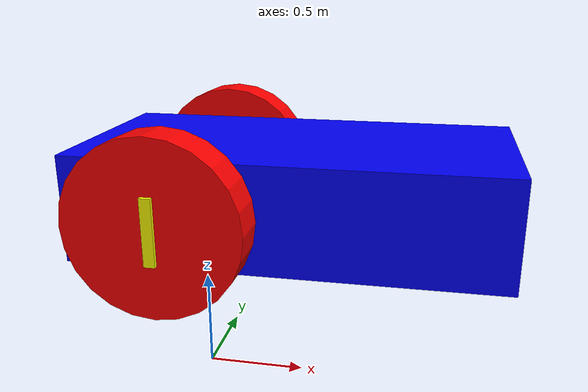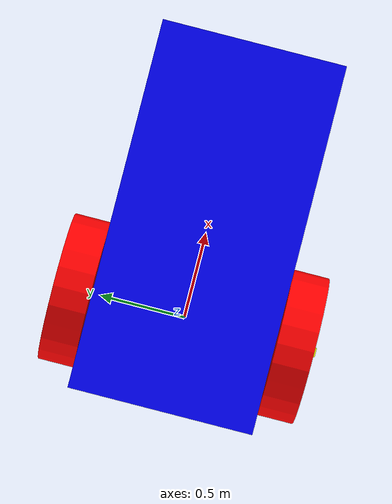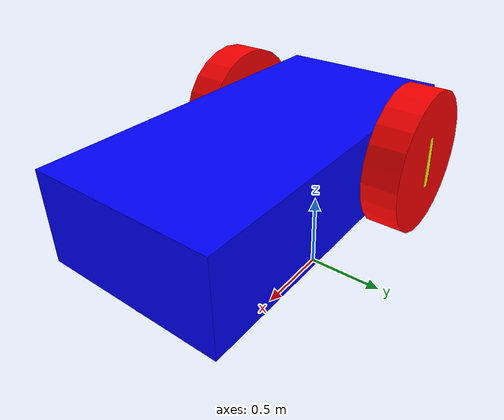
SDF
<?xml version="1.0" ?>
<sdf version="1.9">
    <model name='vehicle_blue' canonical_link='chassis'>

        <frame name="lidar_frame" attached_to='chassis'>
            <pose>0.8 0 0.5 0 0 0</pose>
        </frame>
        <link name='chassis'>
            <pose relative_to='__model__'>0.5 0 1 0 0 0</pose>
            <sensor name='gpu_lidar' type='gpu_lidar'>"
                <pose relative_to='lidar_frame'>0 0 0 0 0 0</pose>
                <topic>lidar</topic>
                <update_rate>10</update_rate>
                <ray>
                    <scan>
                        <horizontal>
                            <samples>640</samples>
                            <resolution>1</resolution>
                            <min_angle>-1.396263</min_angle>
                            <max_angle>1.396263</max_angle>
                        </horizontal>
                        <vertical>
                            <samples>1</samples>
                            <resolution>0.01</resolution>
                            <min_angle>0</min_angle>
                            <max_angle>0</max_angle>
                        </vertical>
                    </scan>
                    <range>
                        <min>0.08</min>
                        <max>10.0</max>
                        <resolution>0.01</resolution>
                    </range>
                </ray>
                <always_on>1</always_on>
                <visualize>true</visualize>
            </sensor>

            <sensor name="imu_sensor" type="imu">
                <always_on>1</always_on>
                <update_rate>1</update_rate>
                <visualize>true</visualize>
                <topic>imu</topic>
            </sensor>
            <inertial> <!--inertial properties of the link mass, inertia matix-->
                <mass>1.14395</mass>
                <inertia>
                    <ixx>0.095329</ixx>
                    <ixy>0</ixy>
                    <ixz>0</ixz>
                    <iyy>0.381317</iyy>
                    <iyz>0</iyz>
                    <izz>0.476646</izz>
                </inertia>
            </inertial>

            <visual name='visual'>
                <geometry>
                    <box>
                        <size>2.0 1.0 0.5</size>
                    </box>
                </geometry>
                <!--let's add color to our link-->
                <material>
                    <ambient>0.0 0.0 1.0 1</ambient>
                    <diffuse>0.0 0.0 1.0 1</diffuse>
                    <specular>0.0 0.0 1.0 1</specular>
                </material>
            </visual>
            <collision name='collision'>
                <geometry>
                    <box>
                        <size>2.0 1.0 0.5</size>
                    </box>
                </geometry>
            </collision>
        </link>

        <link name='left_wheel'>
            <pose relative_to="chassis">-0.5 0.6 0 -1.5707 0 0</pose>
            <inertial>
                <mass>1</mass>
                <inertia>
                    <ixx>0.043333</ixx>
                    <ixy>0</ixy>
                    <ixz>0</ixz>
                    <iyy>0.043333</iyy>
                    <iyz>0</iyz>
                    <izz>0.08</izz>
                </inertia>
            </inertial>
            <visual name='visual'>
                <geometry>
                    <cylinder>
                        <radius>0.4</radius>
                        <length>0.2</length>
                    </cylinder>
                </geometry>
                <material>
                    <ambient>1.0 0.0 0.0 1</ambient>
                    <diffuse>1.0 0.0 0.0 1</diffuse>
                    <specular>1.0 0.0 0.0 1</specular>
                </material>
            </visual>
            <visual name="rotation_marker">
                <!-- Marker etwas außerhalb der Radflaeche -->
                <pose>0 0 -0.01 0 0 0</pose>

                <geometry>
                    <box>
                        <size>0.05 0.30 0.22</size>
                    </box>
                </geometry>

                <material>
                    <ambient>1 1 0 1</ambient>
                    <diffuse>1 1 0 1</diffuse>
                </material>
            </visual>
            <collision name='collision'>
                <geometry>
                    <cylinder>
                        <radius>0.4</radius>
                        <length>0.2</length>
                    </cylinder>
                </geometry>
            </collision>
        </link>

        <!--The same as left wheel but with different position-->
        <link name='right_wheel'>
            <pose relative_to="chassis">-0.5 -0.6 0 -1.5707 0 0</pose> <!--angles are in radian-->
            <inertial>
                <mass>1</mass>
                <inertia>
                    <ixx>0.043333</ixx>
                    <ixy>0</ixy>
                    <ixz>0</ixz>
                    <iyy>0.043333</iyy>
                    <iyz>0</iyz>
                    <izz>0.08</izz>
                </inertia>
            </inertial>
            <visual name='visual'>
                <geometry>
                    <cylinder>
                        <radius>0.4</radius>
                        <length>0.2</length>
                    </cylinder>
                </geometry>
                <material>
                    <ambient>1.0 0.0 0.0 1</ambient>
                    <diffuse>1.0 0.0 0.0 1</diffuse>
                    <specular>1.0 0.0 0.0 1</specular>
                </material>
            </visual>
            <visual name="rotation_marker">
                <!-- Marker etwas außerhalb der Radfläche -->
                <pose>0 0 -0.01 0 0 0</pose>

                <geometry>
                    <box>
                        <size>0.05 0.30 0.22</size>
                    </box>
                </geometry>

                <material>
                    <ambient>1 1 0 1</ambient>
                    <diffuse>1 1 0 1</diffuse>
                </material>
            </visual>
            <collision name='collision'>
                <geometry>
                    <cylinder>
                        <radius>0.4</radius>
                        <length>0.2</length>
                    </cylinder>
                </geometry>
            </collision>
        </link>

        <frame name="caster_frame" attached_to='chassis'>
            <pose>0.8 0 -0.2 0 0 0</pose>
        </frame>

        <!--caster wheel-->
        <link name='caster'>
            <pose relative_to='caster_frame'/>
            <inertial>
                <mass>1</mass>
                <inertia>
                    <ixx>0.016</ixx>
                    <ixy>0</ixy>
                    <ixz>0</ixz>
                    <iyy>0.016</iyy>
                    <iyz>0</iyz>
                    <izz>0.016</izz>
                </inertia>
            </inertial>
            <visual name='visual'>
                <geometry>
                    <sphere>
                        <radius>0.2</radius>
                    </sphere>
                </geometry>
                <material>
                    <ambient>0.0 1 0.0 1</ambient>
                    <diffuse>0.0 1 0.0 1</diffuse>
                    <specular>0.0 1 0.0 1</specular>
                </material>
            </visual>
            <collision name='collision'>
                <geometry>
                    <sphere>
                        <radius>0.2</radius>
                    </sphere>
                </geometry>
            </collision>
        </link>

        <joint name='left_wheel_joint' type='revolute'>
            <pose relative_to='left_wheel'/>
            <parent>chassis</parent>
            <child>left_wheel</child>
            <axis>
                <xyz expressed_in='__model__'>0 1 0</xyz> <!--can be defined as any frame or even arbitrary frames-->
                <limit>
                    <lower>-1.79769e+308</lower>    <!--negative infinity-->
                    <upper>1.79769e+308</upper>     <!--positive infinity-->
                </limit>
            </axis>
        </joint>

        <joint name='right_wheel_joint' type='revolute'>
            <pose relative_to='right_wheel'/>
            <parent>chassis</parent>
            <child>right_wheel</child>
            <axis>
                <xyz expressed_in='__model__'>0 1 0</xyz>
                <limit>
                    <lower>-1.79769e+308</lower>    <!--negative infinity-->
                    <upper>1.79769e+308</upper>     <!--positive infinity-->
                </limit>
            </axis>
        </joint>

        <joint name='caster_wheel' type='ball'>
            <parent>chassis</parent>
            <child>caster</child>
        </joint>

        <plugin
            filename="gz-sim-diff-drive-system"
            name="gz::sim::systems::DiffDrive">
            <left_joint>left_wheel_joint</left_joint>
            <right_joint>right_wheel_joint</right_joint>
            <wheel_separation>1.2</wheel_separation>
            <wheel_radius>0.4</wheel_radius>
            <odom_publish_frequency>1</odom_publish_frequency>
            <topic>cmd_vel</topic>
        </plugin>
    </model>

</sdf>
